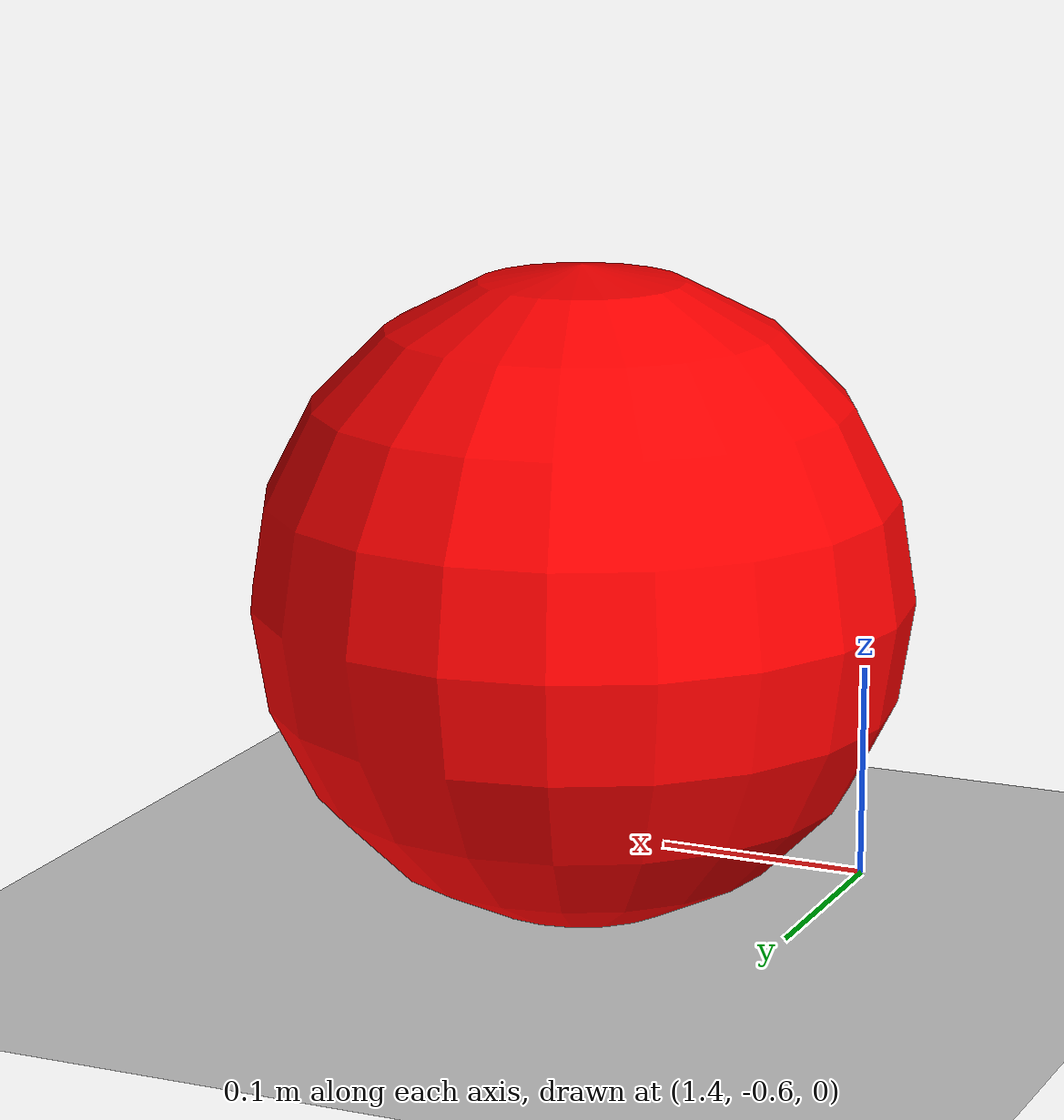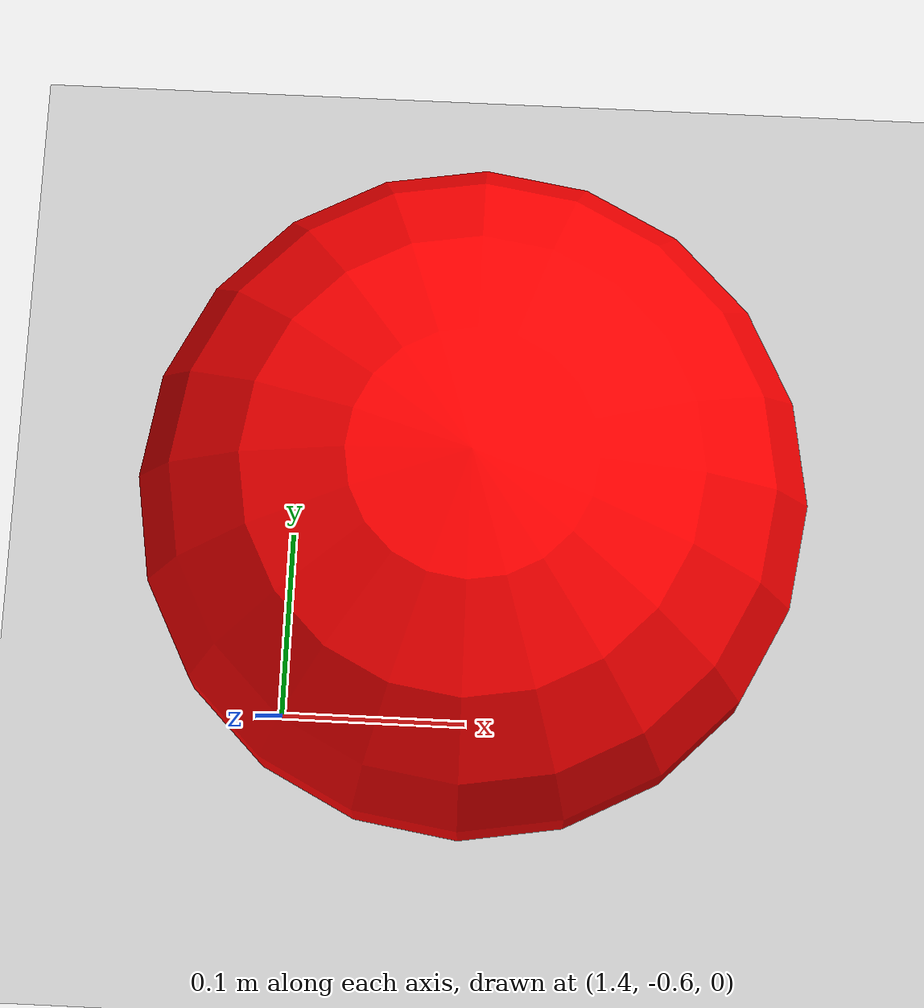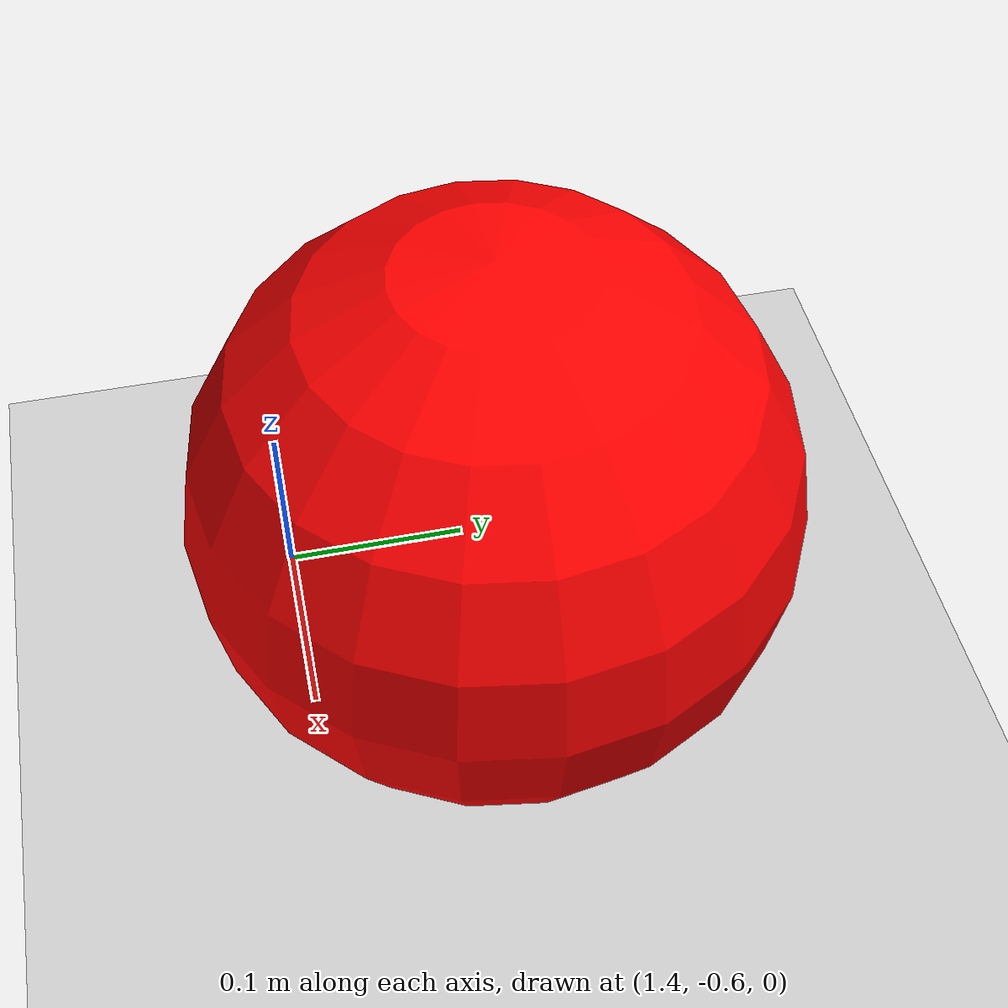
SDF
<?xml version="1.0" ?>
<sdf version='1.8'>
  <world name='default'>

    <!-- Physics plugin -->
    <plugin
      filename="libgz-sim-physics-system.so"
      name="gz::sim::systems::Physics">
    </plugin>

    <!-- User Commands plugin (entity oluşturma için) -->
    <plugin
      filename="libgz-sim-user-commands-system.so"
      name="gz::sim::systems::UserCommands">
    </plugin>

    <!-- Scene Broadcaster plugin -->
    <plugin
      filename="libgz-sim-scene-broadcaster-system.so"
      name="gz::sim::systems::SceneBroadcaster">
    </plugin>

    <!-- Sensors plugin - Kamera sensörü için gerekli -->
    <plugin
      filename="libgz-sim-sensors-system.so"
      name="gz::sim::systems::Sensors">
    </plugin>

    <!-- ROS Clock Publisher - /clock topic'ini GAZEBO SAHİPLENİR -->
    <!-- Bu plugin sayesinde /clock topic'i asla sahipsiz kalmaz -->
    <plugin
      filename="gz-sim-ros-clock-publisher-system"
      name="gz::sim::systems::RosClockPublisher">
    </plugin>

    <gravity>0 0 -9.8</gravity>

    <scene>
      <ambient>0.4 0.4 0.4 1</ambient>
      <background>0.7 0.7 0.7 1</background>
      <shadows>true</shadows>
    </scene>

    <physics name='default_physics' type='ode'>
      <max_step_size>0.001</max_step_size>
      <real_time_factor>1</real_time_factor>
      <real_time_update_rate>1000</real_time_update_rate>
    </physics>

    <!-- Ground plane -->
    <model name='ground_plane'>
      <static>true</static>
      <link name='link'>
        <collision name='collision'>
          <geometry>
            <plane>
              <normal>0 0 1</normal>
              <size>100 100</size>
            </plane>
          </geometry>
          <surface>
            <friction>
              <ode/>
            </friction>
          </surface>
        </collision>
        <visual name='visual'>
          <geometry>
            <plane>
              <normal>0 0 1</normal>
              <size>100 100</size>
            </plane>
          </geometry>
          <material>
            <ambient>0.8 0.8 0.8 1</ambient>
            <diffuse>0.8 0.8 0.8 1</diffuse>
            <specular>0.8 0.8 0.8 1</specular>
          </material>
        </visual>
        <pose>0 0 0 0 0 0</pose>
        <inertial>
          <mass>1</mass>
          <inertia>
            <ixx>1</ixx>
            <iyy>1</iyy>
            <izz>1</izz>
          </inertia>
        </inertial>
      </link>
    </model>

    <!-- White Ball -->
    <model name='white_ball'>
      <pose>1.5 -0.5 0.15 0 0 0</pose> <!-- Robotun sol önünde -->
      <link name='ball_link'>
        <inertial>
          <mass>0.2</mass> <!-- 200 gram -->
          <inertia>
            <ixx>0.0006</ixx>
            <iyy>0.0006</iyy>
            <izz>0.0006</izz>
          </inertia>
        </inertial>
        <collision name='collision'>
          <geometry>
            <sphere>
              <radius>0.15</radius> <!-- 15 cm yarıçap, 30 cm çap -->
            </sphere>
          </geometry>
          <surface>
            <friction>
              <ode>
                <mu>0.8</mu>
                <mu2>0.8</mu2>
              </ode>
            </friction>
          </surface>
        </collision>
        <visual name='visual'>
          <geometry>
            <sphere>
              <radius>0.15</radius>
            </sphere>
          </geometry>
          <material>
            <ambient>1 0 0 1</ambient> <!-- Kırmızı -->
            <diffuse>1 0 0 1</diffuse>
            <specular>0.3 0.3 0.3 1</specular>
          </material>
        </visual>
      </link>
    </model>

    <!-- Sun light -->
    <light name='sun' type='directional'>
      <pose>0 0 10 0 0 0</pose>
      <cast_shadows>true</cast_shadows>
      <direction>-0.5 0.1 -0.9</direction>
      <diffuse>0.8 0.8 0.8 1</diffuse>
      <specular>0.2 0.2 0.2 1</specular>
      <attenuation>
        <range>1000</range>
        <constant>0.9</constant>
        <linear>0.01</linear>
        <quadratic>0.001</quadratic>
      </attenuation>
    </light>

  </world>
</sdf>
